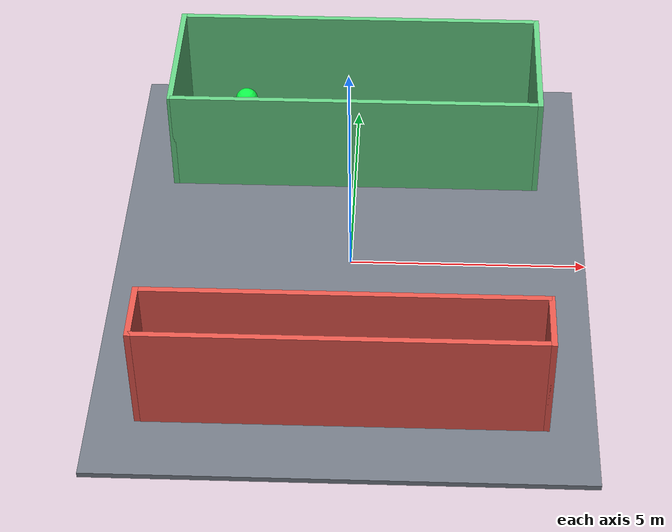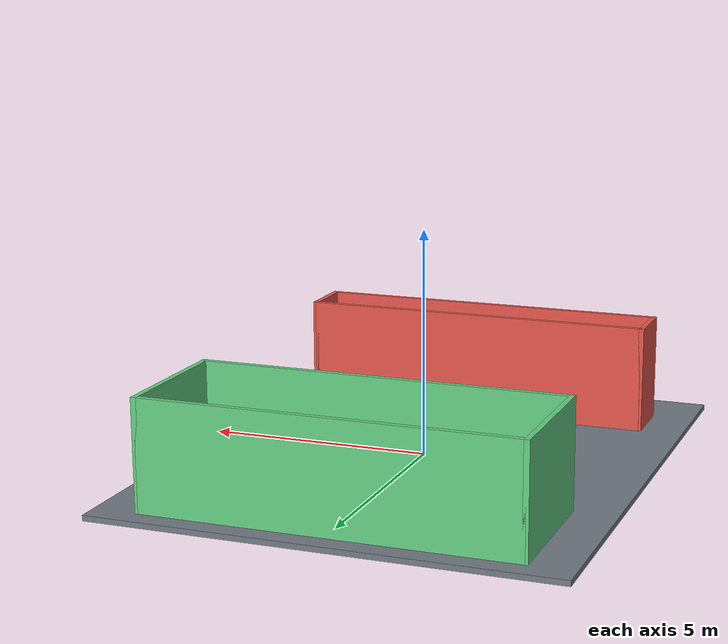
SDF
<?xml version="1.0"?>
<sdf version="1.10">
  <world name="xq_p9_integrity_gate">
    <gravity>0 0 -9.80665</gravity>
    <physics name="xq_p9_1khz" type="ode">
      <max_step_size>0.001</max_step_size>
      <real_time_factor>1.0</real_time_factor>
      <real_time_update_rate>1000</real_time_update_rate>
    </physics>
    <plugin filename="gz-sim-physics-system" name="gz::sim::systems::Physics"/>
    <plugin filename="gz-sim-user-commands-system" name="gz::sim::systems::UserCommands"/>
    <plugin filename="gz-sim-scene-broadcaster-system" name="gz::sim::systems::SceneBroadcaster"/>
    <scene>
      <ambient>0.78 0.80 0.84</ambient>
      <background>0.16 0.18 0.22</background>
      <shadows>true</shadows>
    </scene>
    <light name="sun" type="directional">
      <pose>0 0 12 0 0 0</pose>
      <diffuse>0.95 0.95 0.92 1</diffuse>
      <specular>0.2 0.2 0.2 1</specular>
      <direction>-0.3 0.2 -1</direction>
    </light>

    <!-- Open-top certification laboratory: walls stay visible; there is no roof. -->
    <model name="xq_p9_gate_geometry">
      <static>true</static>
      <link name="geometry">
        <collision name="floor_collision">
          <pose>0 0 -0.06 0 0 0</pose>
          <geometry><box><size>10 12 0.12</size></box></geometry>
        </collision>
        <visual name="floor_visual">
          <pose>0 0 -0.06 0 0 0</pose>
          <geometry><box><size>10 12 0.12</size></box></geometry>
          <material><ambient>0.34 0.37 0.41 1</ambient><diffuse>0.45 0.48 0.52 1</diffuse></material>
        </visual>

        <!-- wide_room: centre y=4, clear width 3.0 m -->
        <collision name="wide_south_collision"><pose>0 2.5 1.2 0 0 0</pose><geometry><box><size>8 0.12 2.4</size></box></geometry></collision>
        <collision name="wide_north_collision"><pose>0 5.5 1.2 0 0 0</pose><geometry><box><size>8 0.12 2.4</size></box></geometry></collision>
        <collision name="wide_west_collision"><pose>-4 4 1.2 0 0 0</pose><geometry><box><size>0.12 3.12 2.4</size></box></geometry></collision>
        <collision name="wide_east_collision"><pose>4 4 1.2 0 0 0</pose><geometry><box><size>0.12 3.12 2.4</size></box></geometry></collision>
        <visual name="wide_south_visual"><pose>0 2.5 1.2 0 0 0</pose><geometry><box><size>8 0.12 2.4</size></box></geometry><material><ambient>0.32 0.65 0.42 1</ambient><diffuse>0.40 0.82 0.52 1</diffuse></material></visual>
        <visual name="wide_north_visual"><pose>0 5.5 1.2 0 0 0</pose><geometry><box><size>8 0.12 2.4</size></box></geometry><material><ambient>0.32 0.65 0.42 1</ambient><diffuse>0.40 0.82 0.52 1</diffuse></material></visual>
        <visual name="wide_west_visual"><pose>-4 4 1.2 0 0 0</pose><geometry><box><size>0.12 3.12 2.4</size></box></geometry><material><ambient>0.32 0.65 0.42 1</ambient><diffuse>0.40 0.82 0.52 1</diffuse></material></visual>
        <visual name="wide_east_visual"><pose>4 4 1.2 0 0 0</pose><geometry><box><size>0.12 3.12 2.4</size></box></geometry><material><ambient>0.32 0.65 0.42 1</ambient><diffuse>0.40 0.82 0.52 1</diffuse></material></visual>

        <!-- narrow_passage: centre y=-4, clear width 1.2 m -->
        <collision name="narrow_south_collision"><pose>0 -4.6 1.2 0 0 0</pose><geometry><box><size>8 0.12 2.4</size></box></geometry></collision>
        <collision name="narrow_north_collision"><pose>0 -3.4 1.2 0 0 0</pose><geometry><box><size>8 0.12 2.4</size></box></geometry></collision>
        <collision name="narrow_west_collision"><pose>-4 -4 1.2 0 0 0</pose><geometry><box><size>0.12 1.32 2.4</size></box></geometry></collision>
        <collision name="narrow_east_collision"><pose>4 -4 1.2 0 0 0</pose><geometry><box><size>0.12 1.32 2.4</size></box></geometry></collision>
        <visual name="narrow_south_visual"><pose>0 -4.6 1.2 0 0 0</pose><geometry><box><size>8 0.12 2.4</size></box></geometry><material><ambient>0.72 0.28 0.25 1</ambient><diffuse>0.90 0.34 0.30 1</diffuse></material></visual>
        <visual name="narrow_north_visual"><pose>0 -3.4 1.2 0 0 0</pose><geometry><box><size>8 0.12 2.4</size></box></geometry><material><ambient>0.72 0.28 0.25 1</ambient><diffuse>0.90 0.34 0.30 1</diffuse></material></visual>
        <visual name="narrow_west_visual"><pose>-4 -4 1.2 0 0 0</pose><geometry><box><size>0.12 1.32 2.4</size></box></geometry><material><ambient>0.72 0.28 0.25 1</ambient><diffuse>0.90 0.34 0.30 1</diffuse></material></visual>
        <visual name="narrow_east_visual"><pose>4 -4 1.2 0 0 0</pose><geometry><box><size>0.12 1.32 2.4</size></box></geometry><material><ambient>0.72 0.28 0.25 1</ambient><diffuse>0.90 0.34 0.30 1</diffuse></material></visual>

        <visual name="wide_accept_track"><pose>0 4 0.03 0 0 0</pose><geometry><box><size>5 0.10 0.05</size></box></geometry><material><ambient>0.05 0.85 0.22 1</ambient><diffuse>0.05 1 0.28 1</diffuse><emissive>0.02 0.35 0.08 1</emissive></material></visual>
        <visual name="narrow_reject_track"><pose>0 -4 0.03 0 0 0</pose><geometry><box><size>5 0.10 0.05</size></box></geometry><material><ambient>0.95 0.08 0.06 1</ambient><diffuse>1 0.10 0.08 1</diffuse><emissive>0.35 0.02 0.01 1</emissive></material></visual>
      </link>
    </model>

    <model name="wide_room_candidate_uav">
      <static>true</static><pose>-2.5 4 1.2 0 0 0</pose><link name="body">
        <visual name="body_visual"><geometry><sphere><radius>0.25</radius></sphere></geometry><material><ambient>0.05 0.85 0.22 1</ambient><diffuse>0.05 1 0.28 1</diffuse></material></visual>
      </link>
    </model>
    <model name="narrow_passage_candidate_uav">
      <static>true</static><pose>-2.5 -4 1.2 0 0 0</pose><link name="body">
        <visual name="body_visual"><geometry><sphere><radius>0.25</radius></sphere></geometry><material><ambient>0.95 0.08 0.06 1</ambient><diffuse>1 0.10 0.08 1</diffuse></material></visual>
      </link>
    </model>
  </world>
</sdf>
